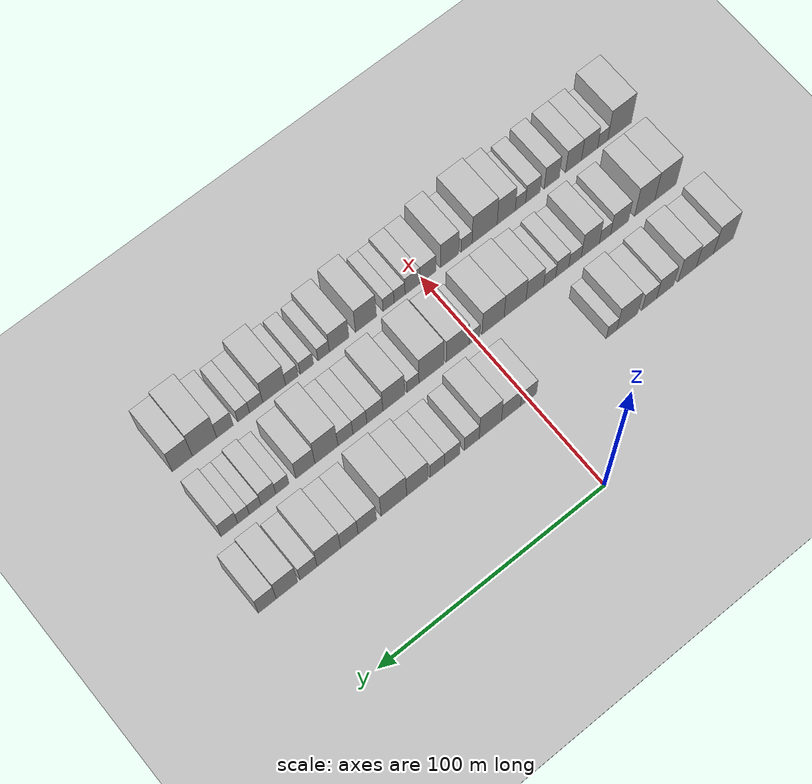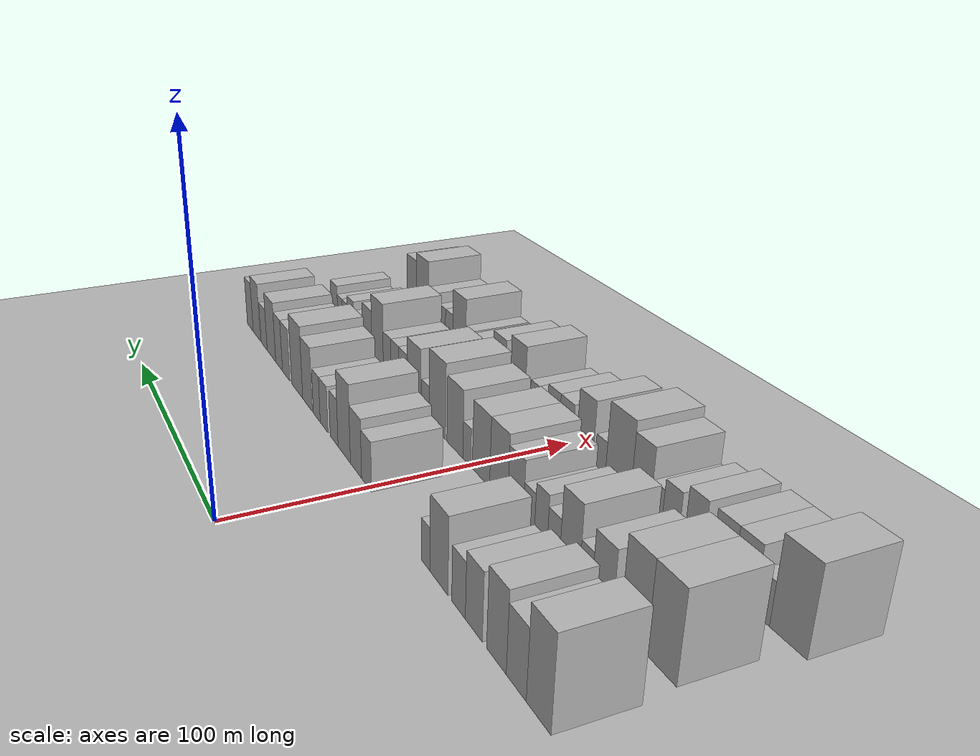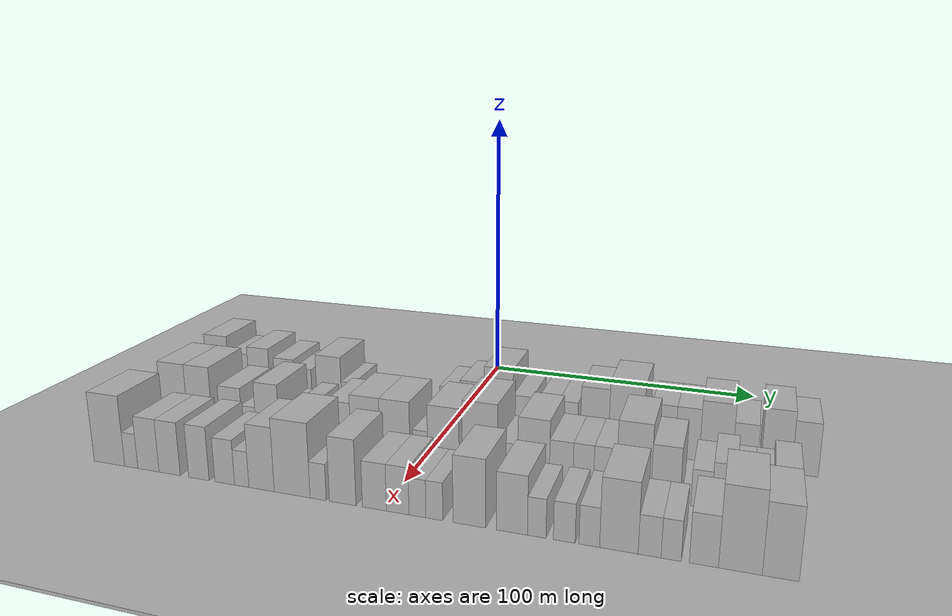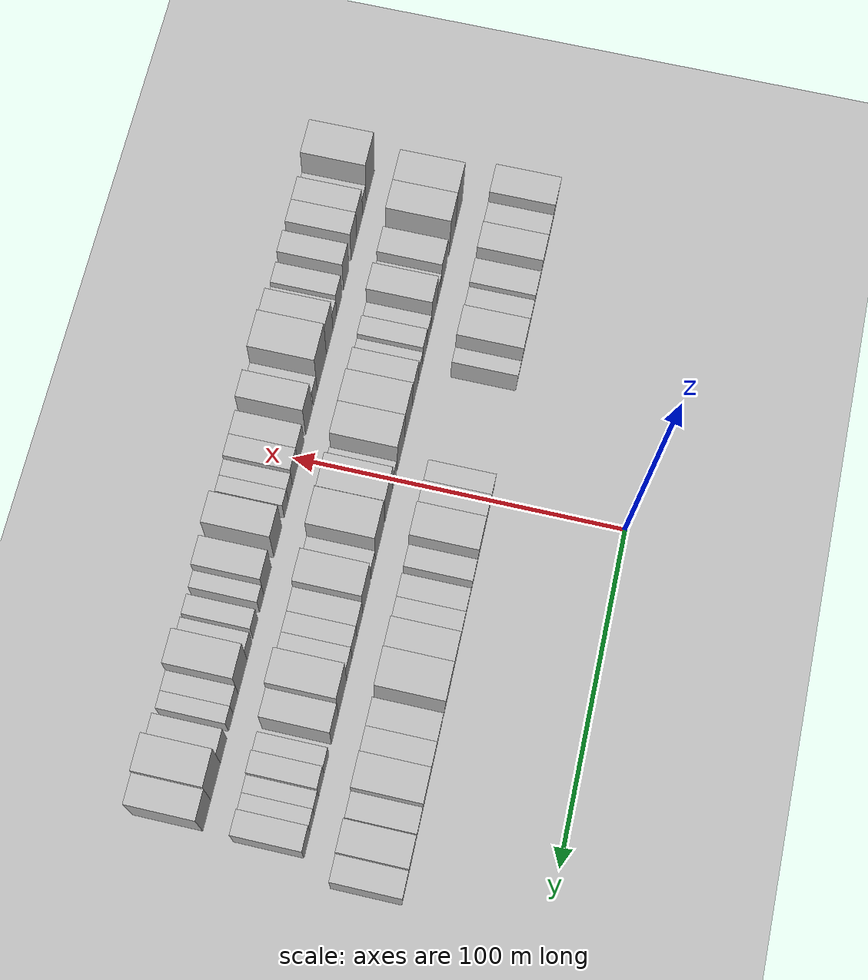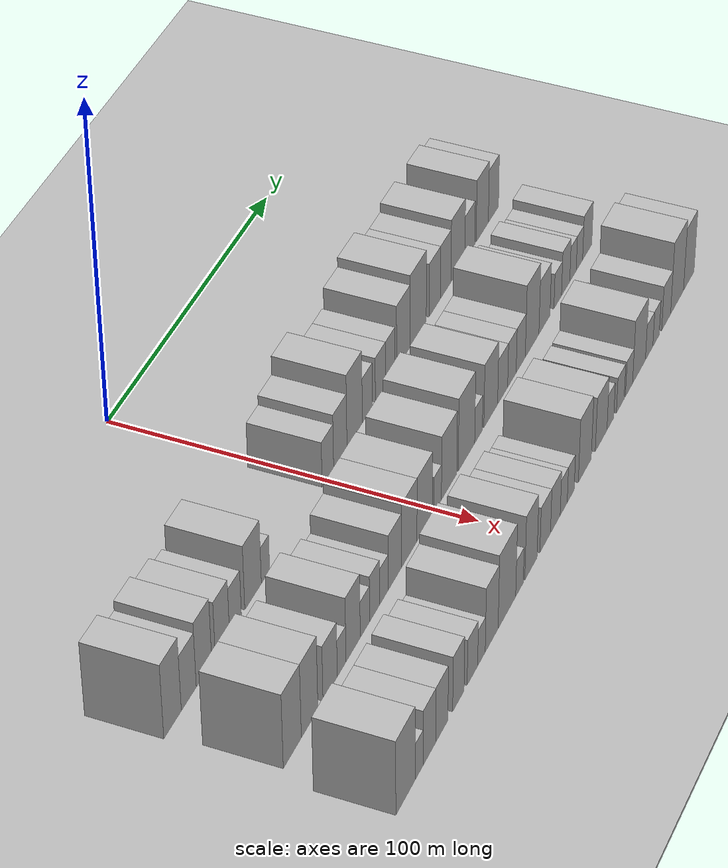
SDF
<sdf version="1.6">
 <world name="default">
  <include><name>ground_plane_1</name><uri>model://HANNAS_ground_plane</uri></include>
  <include>
   <name>ground_plane_2</name>
   <uri>model://HANNAS_ground_plane</uri>
   <pose>100 0 0  0 0 0</pose>
  </include>
  <model name="building_26">
   <static>1</static>
   <pose>50.0000 -91.2819 0 0.000000 0.000000 0.000000</pose>
   <link name="link">
    <pose>0 0 12.00 0 0 0</pose>
    <collision name="collision"><geometry><box><size>20.0000 9.6151 24.0000</size></box></geometry></collision>
    <visual name="visual">
     <cast_shadows>0</cast_shadows>
     <geometry><box><size>20.0000 9.6151 24.0000</size></box></geometry>
     <material>
      <script>
       <uri>model://HANNAS_wall/materials/scripts</uri>
       <uri>model://HANNAS_wall/materials/textures</uri>
       <name>vrc/HANNAS_wall</name>
      </script>
     </material>
    </visual>
   </link>
  </model>
  <model name="building_27">
   <static>1</static>
   <pose>50.0000 -82.3182 0 0.000000 0.000000 0.000000</pose>
   <link name="link">
    <pose>0 0 9.00 0 0 0</pose>
    <collision name="collision"><geometry><box><size>20.0000 8.3124 18.0000</size></box></geometry></collision>
    <visual name="visual">
     <cast_shadows>0</cast_shadows>
     <geometry><box><size>20.0000 8.3124 18.0000</size></box></geometry>
     <material>
      <script>
       <uri>model://HANNAS_wall/materials/scripts</uri>
       <uri>model://HANNAS_wall/materials/textures</uri>
       <name>vrc/HANNAS_wall</name>
      </script>
     </material>
    </visual>
   </link>
  </model>
  <model name="building_28">
   <static>1</static>
   <pose>50.0000 -73.7900 0 0.000000 0.000000 0.000000</pose>
   <link name="link">
    <pose>0 0 10.50 0 0 0</pose>
    <collision name="collision"><geometry><box><size>20.0000 8.7438 21.0000</size></box></geometry></collision>
    <visual name="visual">
     <cast_shadows>0</cast_shadows>
     <geometry><box><size>20.0000 8.7438 21.0000</size></box></geometry>
     <material>
      <script>
       <uri>model://HANNAS_wall/materials/scripts</uri>
       <uri>model://HANNAS_wall/materials/textures</uri>
       <name>vrc/HANNAS_wall</name>
      </script>
     </material>
    </visual>
   </link>
  </model>
  <model name="building_29">
   <static>1</static>
   <pose>50.0000 -63.3321 0 0.000000 0.000000 0.000000</pose>
   <link name="link">
    <pose>0 0 9.00 0 0 0</pose>
    <collision name="collision"><geometry><box><size>20.0000 8.1721 18.0000</size></box></geometry></collision>
    <visual name="visual">
     <cast_shadows>0</cast_shadows>
     <geometry><box><size>20.0000 8.1721 18.0000</size></box></geometry>
     <material>
      <script>
       <uri>model://HANNAS_wall/materials/scripts</uri>
       <uri>model://HANNAS_wall/materials/textures</uri>
       <name>vrc/HANNAS_wall</name>
      </script>
     </material>
    </visual>
   </link>
  </model>
  <model name="building_30">
   <static>1</static>
   <pose>50.0000 -55.7909 0 0.000000 0.000000 0.000000</pose>
   <link name="link">
    <pose>0 0 7.50 0 0 0</pose>
    <collision name="collision"><geometry><box><size>20.0000 6.9103 15.0000</size></box></geometry></collision>
    <visual name="visual">
     <cast_shadows>0</cast_shadows>
     <geometry><box><size>20.0000 6.9103 15.0000</size></box></geometry>
     <material>
      <script>
       <uri>model://HANNAS_wall/materials/scripts</uri>
       <uri>model://HANNAS_wall/materials/textures</uri>
       <name>vrc/HANNAS_wall</name>
      </script>
     </material>
    </visual>
   </link>
  </model>
  <model name="building_31">
   <static>1</static>
   <pose>50.0000 -45.4435 0 0.000000 0.000000 0.000000</pose>
   <link name="link">
    <pose>0 0 10.50 0 0 0</pose>
    <collision name="collision"><geometry><box><size>20.0000 9.7845 21.0000</size></box></geometry></collision>
    <visual name="visual">
     <cast_shadows>0</cast_shadows>
     <geometry><box><size>20.0000 9.7845 21.0000</size></box></geometry>
     <material>
      <script>
       <uri>model://HANNAS_wall/materials/scripts</uri>
       <uri>model://HANNAS_wall/materials/textures</uri>
       <name>vrc/HANNAS_wall</name>
      </script>
     </material>
    </visual>
   </link>
  </model>
  <model name="building_32">
   <static>1</static>
   <pose>50.0000 -38.0709 0 0.000000 0.000000 0.000000</pose>
   <link name="link">
    <pose>0 0 6.00 0 0 0</pose>
    <collision name="collision"><geometry><box><size>20.0000 4.9606 12.0000</size></box></geometry></collision>
    <visual name="visual">
     <cast_shadows>0</cast_shadows>
     <geometry><box><size>20.0000 4.9606 12.0000</size></box></geometry>
     <material>
      <script>
       <uri>model://HANNAS_wall/materials/scripts</uri>
       <uri>model://HANNAS_wall/materials/textures</uri>
       <name>vrc/HANNAS_wall</name>
      </script>
     </material>
    </visual>
   </link>
  </model>
  <model name="building_33">
   <static>1</static>
   <pose>50.0000 0.4339 0 0.000000 0.000000 0.000000</pose>
   <link name="link">
    <pose>0 0 7.50 0 0 0</pose>
    <collision name="collision"><geometry><box><size>20.0000 7.3497 15.0000</size></box></geometry></collision>
    <visual name="visual">
     <cast_shadows>0</cast_shadows>
     <geometry><box><size>20.0000 7.3497 15.0000</size></box></geometry>
     <material>
      <script>
       <uri>model://HANNAS_wall/materials/scripts</uri>
       <uri>model://HANNAS_wall/materials/textures</uri>
       <name>vrc/HANNAS_wall</name>
      </script>
     </material>
    </visual>
   </link>
  </model>
  <model name="building_34">
   <static>1</static>
   <pose>50.0000 8.4122 0 0.000000 0.000000 0.000000</pose>
   <link name="link">
    <pose>0 0 9.00 0 0 0</pose>
    <collision name="collision"><geometry><box><size>20.0000 8.6069 18.0000</size></box></geometry></collision>
    <visual name="visual">
     <cast_shadows>0</cast_shadows>
     <geometry><box><size>20.0000 8.6069 18.0000</size></box></geometry>
     <material>
      <script>
       <uri>model://HANNAS_wall/materials/scripts</uri>
       <uri>model://HANNAS_wall/materials/textures</uri>
       <name>vrc/HANNAS_wall</name>
      </script>
     </material>
    </visual>
   </link>
  </model>
  <model name="building_35">
   <static>1</static>
   <pose>50.0000 17.7551 0 0.000000 0.000000 0.000000</pose>
   <link name="link">
    <pose>0 0 12.00 0 0 0</pose>
    <collision name="collision"><geometry><box><size>20.0000 10.0788 24.0000</size></box></geometry></collision>
    <visual name="visual">
     <cast_shadows>0</cast_shadows>
     <geometry><box><size>20.0000 10.0788 24.0000</size></box></geometry>
     <material>
      <script>
       <uri>model://HANNAS_wall/materials/scripts</uri>
       <uri>model://HANNAS_wall/materials/textures</uri>
       <name>vrc/HANNAS_wall</name>
      </script>
     </material>
    </visual>
   </link>
  </model>
  <model name="building_36">
   <static>1</static>
   <pose>50.0000 26.1140 0 0.000000 0.000000 0.000000</pose>
   <link name="link">
    <pose>0 0 7.50 0 0 0</pose>
    <collision name="collision"><geometry><box><size>20.0000 6.6390 15.0000</size></box></geometry></collision>
    <visual name="visual">
     <cast_shadows>0</cast_shadows>
     <geometry><box><size>20.0000 6.6390 15.0000</size></box></geometry>
     <material>
      <script>
       <uri>model://HANNAS_wall/materials/scripts</uri>
       <uri>model://HANNAS_wall/materials/textures</uri>
       <name>vrc/HANNAS_wall</name>
      </script>
     </material>
    </visual>
   </link>
  </model>
  <model name="building_37">
   <static>1</static>
   <pose>50.0000 34.9077 0 0.000000 0.000000 0.000000</pose>
   <link name="link">
    <pose>0 0 7.50 0 0 0</pose>
    <collision name="collision"><geometry><box><size>20.0000 6.9484 15.0000</size></box></geometry></collision>
    <visual name="visual">
     <cast_shadows>0</cast_shadows>
     <geometry><box><size>20.0000 6.9484 15.0000</size></box></geometry>
     <material>
      <script>
       <uri>model://HANNAS_wall/materials/scripts</uri>
       <uri>model://HANNAS_wall/materials/textures</uri>
       <name>vrc/HANNAS_wall</name>
      </script>
     </material>
    </visual>
   </link>
  </model>
  <model name="building_38">
   <static>1</static>
   <pose>50.0000 41.5655 0 0.000000 0.000000 0.000000</pose>
   <link name="link">
    <pose>0 0 7.50 0 0 0</pose>
    <collision name="collision"><geometry><box><size>20.0000 6.3673 15.0000</size></box></geometry></collision>
    <visual name="visual">
     <cast_shadows>0</cast_shadows>
     <geometry><box><size>20.0000 6.3673 15.0000</size></box></geometry>
     <material>
      <script>
       <uri>model://HANNAS_wall/materials/scripts</uri>
       <uri>model://HANNAS_wall/materials/textures</uri>
       <name>vrc/HANNAS_wall</name>
      </script>
     </material>
    </visual>
   </link>
  </model>
  <model name="building_39">
   <static>1</static>
   <pose>50.0000 50.4224 0 0.000000 0.000000 0.000000</pose>
   <link name="link">
    <pose>0 0 10.50 0 0 0</pose>
    <collision name="collision"><geometry><box><size>20.0000 9.3465 21.0000</size></box></geometry></collision>
    <visual name="visual">
     <cast_shadows>0</cast_shadows>
     <geometry><box><size>20.0000 9.3465 21.0000</size></box></geometry>
     <material>
      <script>
       <uri>model://HANNAS_wall/materials/scripts</uri>
       <uri>model://HANNAS_wall/materials/textures</uri>
       <name>vrc/HANNAS_wall</name>
      </script>
     </material>
    </visual>
   </link>
  </model>
  <model name="building_40">
   <static>1</static>
   <pose>50.0000 60.7193 0 0.000000 0.000000 0.000000</pose>
   <link name="link">
    <pose>0 0 12.00 0 0 0</pose>
    <collision name="collision"><geometry><box><size>20.0000 11.2474 24.0000</size></box></geometry></collision>
    <visual name="visual">
     <cast_shadows>0</cast_shadows>
     <geometry><box><size>20.0000 11.2474 24.0000</size></box></geometry>
     <material>
      <script>
       <uri>model://HANNAS_wall/materials/scripts</uri>
       <uri>model://HANNAS_wall/materials/textures</uri>
       <name>vrc/HANNAS_wall</name>
      </script>
     </material>
    </visual>
   </link>
  </model>
  <model name="building_41">
   <static>1</static>
   <pose>50.0000 72.3830 0 0.000000 0.000000 0.000000</pose>
   <link name="link">
    <pose>0 0 9.00 0 0 0</pose>
    <collision name="collision"><geometry><box><size>20.0000 8.0800 18.0000</size></box></geometry></collision>
    <visual name="visual">
     <cast_shadows>0</cast_shadows>
     <geometry><box><size>20.0000 8.0800 18.0000</size></box></geometry>
     <material>
      <script>
       <uri>model://HANNAS_wall/materials/scripts</uri>
       <uri>model://HANNAS_wall/materials/textures</uri>
       <name>vrc/HANNAS_wall</name>
      </script>
     </material>
    </visual>
   </link>
  </model>
  <model name="building_42">
   <static>1</static>
   <pose>50.0000 80.2050 0 0.000000 0.000000 0.000000</pose>
   <link name="link">
    <pose>0 0 9.00 0 0 0</pose>
    <collision name="collision"><geometry><box><size>20.0000 7.5639 18.0000</size></box></geometry></collision>
    <visual name="visual">
     <cast_shadows>0</cast_shadows>
     <geometry><box><size>20.0000 7.5639 18.0000</size></box></geometry>
     <material>
      <script>
       <uri>model://HANNAS_wall/materials/scripts</uri>
       <uri>model://HANNAS_wall/materials/textures</uri>
       <name>vrc/HANNAS_wall</name>
      </script>
     </material>
    </visual>
   </link>
  </model>
  <model name="building_43">
   <static>1</static>
   <pose>50.0000 89.0378 0 0.000000 0.000000 0.000000</pose>
   <link name="link">
    <pose>0 0 10.50 0 0 0</pose>
    <collision name="collision"><geometry><box><size>20.0000 10.1018 21.0000</size></box></geometry></collision>
    <visual name="visual">
     <cast_shadows>0</cast_shadows>
     <geometry><box><size>20.0000 10.1018 21.0000</size></box></geometry>
     <material>
      <script>
       <uri>model://HANNAS_wall/materials/scripts</uri>
       <uri>model://HANNAS_wall/materials/textures</uri>
       <name>vrc/HANNAS_wall</name>
      </script>
     </material>
    </visual>
   </link>
  </model>
  <model name="building_44">
   <static>1</static>
   <pose>50.0000 97.7844 0 0.000000 0.000000 0.000000</pose>
   <link name="link">
    <pose>0 0 7.50 0 0 0</pose>
    <collision name="collision"><geometry><box><size>20.0000 7.3913 15.0000</size></box></geometry></collision>
    <visual name="visual">
     <cast_shadows>0</cast_shadows>
     <geometry><box><size>20.0000 7.3913 15.0000</size></box></geometry>
     <material>
      <script>
       <uri>model://HANNAS_wall/materials/scripts</uri>
       <uri>model://HANNAS_wall/materials/textures</uri>
       <name>vrc/HANNAS_wall</name>
      </script>
     </material>
    </visual>
   </link>
  </model>
  <model name="building_45">
   <static>1</static>
   <pose>50.0000 107.0497 0 0.000000 0.000000 0.000000</pose>
   <link name="link">
    <pose>0 0 10.50 0 0 0</pose>
    <collision name="collision"><geometry><box><size>20.0000 9.1391 21.0000</size></box></geometry></collision>
    <visual name="visual">
     <cast_shadows>0</cast_shadows>
     <geometry><box><size>20.0000 9.1391 21.0000</size></box></geometry>
     <material>
      <script>
       <uri>model://HANNAS_wall/materials/scripts</uri>
       <uri>model://HANNAS_wall/materials/textures</uri>
       <name>vrc/HANNAS_wall</name>
      </script>
     </material>
    </visual>
   </link>
  </model>
  <model name="building_46">
   <static>1</static>
   <pose>50.0000 115.4404 0 0.000000 0.000000 0.000000</pose>
   <link name="link">
    <pose>0 0 9.00 0 0 0</pose>
    <collision name="collision"><geometry><box><size>20.0000 7.6424 18.0000</size></box></geometry></collision>
    <visual name="visual">
     <cast_shadows>0</cast_shadows>
     <geometry><box><size>20.0000 7.6424 18.0000</size></box></geometry>
     <material>
      <script>
       <uri>model://HANNAS_wall/materials/scripts</uri>
       <uri>model://HANNAS_wall/materials/textures</uri>
       <name>vrc/HANNAS_wall</name>
      </script>
     </material>
    </visual>
   </link>
  </model>
  <model name="building_96">
   <static>1</static>
   <pose>79.0000 -89.3133 0 0.000000 0.000000 0.000000</pose>
   <link name="link">
    <pose>0 0 12.00 0 0 0</pose>
    <collision name="collision"><geometry><box><size>20.0000 10.3865 24.0000</size></box></geometry></collision>
    <visual name="visual">
     <cast_shadows>0</cast_shadows>
     <geometry><box><size>20.0000 10.3865 24.0000</size></box></geometry>
     <material>
      <script>
       <uri>model://HANNAS_wall/materials/scripts</uri>
       <uri>model://HANNAS_wall/materials/textures</uri>
       <name>vrc/HANNAS_wall</name>
      </script>
     </material>
    </visual>
   </link>
  </model>
  <model name="building_97">
   <static>1</static>
   <pose>79.0000 -79.2714 0 0.000000 0.000000 0.000000</pose>
   <link name="link">
    <pose>0 0 12.00 0 0 0</pose>
    <collision name="collision"><geometry><box><size>20.0000 9.6973 24.0000</size></box></geometry></collision>
    <visual name="visual">
     <cast_shadows>0</cast_shadows>
     <geometry><box><size>20.0000 9.6973 24.0000</size></box></geometry>
     <material>
      <script>
       <uri>model://HANNAS_wall/materials/scripts</uri>
       <uri>model://HANNAS_wall/materials/textures</uri>
       <name>vrc/HANNAS_wall</name>
      </script>
     </material>
    </visual>
   </link>
  </model>
  <model name="building_98">
   <static>1</static>
   <pose>79.0000 -67.1455 0 0.000000 0.000000 0.000000</pose>
   <link name="link">
    <pose>0 0 9.00 0 0 0</pose>
    <collision name="collision"><geometry><box><size>20.0000 8.5546 18.0000</size></box></geometry></collision>
    <visual name="visual">
     <cast_shadows>0</cast_shadows>
     <geometry><box><size>20.0000 8.5546 18.0000</size></box></geometry>
     <material>
      <script>
       <uri>model://HANNAS_wall/materials/scripts</uri>
       <uri>model://HANNAS_wall/materials/textures</uri>
       <name>vrc/HANNAS_wall</name>
      </script>
     </material>
    </visual>
   </link>
  </model>
  <model name="building_99">
   <static>1</static>
   <pose>79.0000 -60.2383 0 0.000000 0.000000 0.000000</pose>
   <link name="link">
    <pose>0 0 6.00 0 0 0</pose>
    <collision name="collision"><geometry><box><size>20.0000 5.2599 12.0000</size></box></geometry></collision>
    <visual name="visual">
     <cast_shadows>0</cast_shadows>
     <geometry><box><size>20.0000 5.2599 12.0000</size></box></geometry>
     <material>
      <script>
       <uri>model://HANNAS_wall/materials/scripts</uri>
       <uri>model://HANNAS_wall/materials/textures</uri>
       <name>vrc/HANNAS_wall</name>
      </script>
     </material>
    </visual>
   </link>
  </model>
  <model name="building_100">
   <static>1</static>
   <pose>79.0000 -53.2501 0 0.000000 0.000000 0.000000</pose>
   <link name="link">
    <pose>0 0 10.50 0 0 0</pose>
    <collision name="collision"><geometry><box><size>20.0000 8.7164 21.0000</size></box></geometry></collision>
    <visual name="visual">
     <cast_shadows>0</cast_shadows>
     <geometry><box><size>20.0000 8.7164 21.0000</size></box></geometry>
     <material>
      <script>
       <uri>model://HANNAS_wall/materials/scripts</uri>
       <uri>model://HANNAS_wall/materials/textures</uri>
       <name>vrc/HANNAS_wall</name>
      </script>
     </material>
    </visual>
   </link>
  </model>
  <model name="building_101">
   <static>1</static>
   <pose>79.0000 -45.9746 0 0.000000 0.000000 0.000000</pose>
   <link name="link">
    <pose>0 0 6.00 0 0 0</pose>
    <collision name="collision"><geometry><box><size>20.0000 5.8347 12.0000</size></box></geometry></collision>
    <visual name="visual">
     <cast_shadows>0</cast_shadows>
     <geometry><box><size>20.0000 5.8347 12.0000</size></box></geometry>
     <material>
      <script>
       <uri>model://HANNAS_wall/materials/scripts</uri>
       <uri>model://HANNAS_wall/materials/textures</uri>
       <name>vrc/HANNAS_wall</name>
      </script>
     </material>
    </visual>
   </link>
  </model>
  <model name="building_102">
   <static>1</static>
   <pose>79.0000 -39.9557 0 0.000000 0.000000 0.000000</pose>
   <link name="link">
    <pose>0 0 7.50 0 0 0</pose>
    <collision name="collision"><geometry><box><size>20.0000 6.2031 15.0000</size></box></geometry></collision>
    <visual name="visual">
     <cast_shadows>0</cast_shadows>
     <geometry><box><size>20.0000 6.2031 15.0000</size></box></geometry>
     <material>
      <script>
       <uri>model://HANNAS_wall/materials/scripts</uri>
       <uri>model://HANNAS_wall/materials/textures</uri>
       <name>vrc/HANNAS_wall</name>
      </script>
     </material>
    </visual>
   </link>
  </model>
  <model name="building_103">
   <static>1</static>
   <pose>79.0000 -34.0490 0 0.000000 0.000000 0.000000</pose>
   <link name="link">
    <pose>0 0 6.00 0 0 0</pose>
    <collision name="collision"><geometry><box><size>20.0000 5.6104 12.0000</size></box></geometry></collision>
    <visual name="visual">
     <cast_shadows>0</cast_shadows>
     <geometry><box><size>20.0000 5.6104 12.0000</size></box></geometry>
     <material>
      <script>
       <uri>model://HANNAS_wall/materials/scripts</uri>
       <uri>model://HANNAS_wall/materials/textures</uri>
       <name>vrc/HANNAS_wall</name>
      </script>
     </material>
    </visual>
   </link>
  </model>
  <model name="building_104">
   <static>1</static>
   <pose>79.0000 -27.1470 0 0.000000 0.000000 0.000000</pose>
   <link name="link">
    <pose>0 0 9.00 0 0 0</pose>
    <collision name="collision"><geometry><box><size>20.0000 8.1936 18.0000</size></box></geometry></collision>
    <visual name="visual">
     <cast_shadows>0</cast_shadows>
     <geometry><box><size>20.0000 8.1936 18.0000</size></box></geometry>
     <material>
      <script>
       <uri>model://HANNAS_wall/materials/scripts</uri>
       <uri>model://HANNAS_wall/materials/textures</uri>
       <name>vrc/HANNAS_wall</name>
      </script>
     </material>
    </visual>
   </link>
  </model>
  <model name="building_105">
   <static>1</static>
   <pose>79.0000 -17.9772 0 0.000000 0.000000 0.000000</pose>
   <link name="link">
    <pose>0 0 10.50 0 0 0</pose>
    <collision name="collision"><geometry><box><size>20.0000 10.1460 21.0000</size></box></geometry></collision>
    <visual name="visual">
     <cast_shadows>0</cast_shadows>
     <geometry><box><size>20.0000 10.1460 21.0000</size></box></geometry>
     <material>
      <script>
       <uri>model://HANNAS_wall/materials/scripts</uri>
       <uri>model://HANNAS_wall/materials/textures</uri>
       <name>vrc/HANNAS_wall</name>
      </script>
     </material>
    </visual>
   </link>
  </model>
  <model name="building_106">
   <static>1</static>
   <pose>79.0000 -7.7802 0 0.000000 0.000000 0.000000</pose>
   <link name="link">
    <pose>0 0 10.50 0 0 0</pose>
    <collision name="collision"><geometry><box><size>20.0000 10.2481 21.0000</size></box></geometry></collision>
    <visual name="visual">
     <cast_shadows>0</cast_shadows>
     <geometry><box><size>20.0000 10.2481 21.0000</size></box></geometry>
     <material>
      <script>
       <uri>model://HANNAS_wall/materials/scripts</uri>
       <uri>model://HANNAS_wall/materials/textures</uri>
       <name>vrc/HANNAS_wall</name>
      </script>
     </material>
    </visual>
   </link>
  </model>
  <model name="building_107">
   <static>1</static>
   <pose>79.0000 0.8167 0 0.000000 0.000000 0.000000</pose>
   <link name="link">
    <pose>0 0 6.00 0 0 0</pose>
    <collision name="collision"><geometry><box><size>20.0000 4.9455 12.0000</size></box></geometry></collision>
    <visual name="visual">
     <cast_shadows>0</cast_shadows>
     <geometry><box><size>20.0000 4.9455 12.0000</size></box></geometry>
     <material>
      <script>
       <uri>model://HANNAS_wall/materials/scripts</uri>
       <uri>model://HANNAS_wall/materials/textures</uri>
       <name>vrc/HANNAS_wall</name>
      </script>
     </material>
    </visual>
   </link>
  </model>
  <model name="building_108">
   <static>1</static>
   <pose>79.0000 8.4855 0 0.000000 0.000000 0.000000</pose>
   <link name="link">
    <pose>0 0 10.50 0 0 0</pose>
    <collision name="collision"><geometry><box><size>20.0000 10.3922 21.0000</size></box></geometry></collision>
    <visual name="visual">
     <cast_shadows>0</cast_shadows>
     <geometry><box><size>20.0000 10.3922 21.0000</size></box></geometry>
     <material>
      <script>
       <uri>model://HANNAS_wall/materials/scripts</uri>
       <uri>model://HANNAS_wall/materials/textures</uri>
       <name>vrc/HANNAS_wall</name>
      </script>
     </material>
    </visual>
   </link>
  </model>
  <model name="building_109">
   <static>1</static>
   <pose>79.0000 20.3405 0 0.000000 0.000000 0.000000</pose>
   <link name="link">
    <pose>0 0 12.00 0 0 0</pose>
    <collision name="collision"><geometry><box><size>20.0000 11.3179 24.0000</size></box></geometry></collision>
    <visual name="visual">
     <cast_shadows>0</cast_shadows>
     <geometry><box><size>20.0000 11.3179 24.0000</size></box></geometry>
     <material>
      <script>
       <uri>model://HANNAS_wall/materials/scripts</uri>
       <uri>model://HANNAS_wall/materials/textures</uri>
       <name>vrc/HANNAS_wall</name>
      </script>
     </material>
    </visual>
   </link>
  </model>
  <model name="building_110">
   <static>1</static>
   <pose>79.0000 28.7028 0 0.000000 0.000000 0.000000</pose>
   <link name="link">
    <pose>0 0 6.00 0 0 0</pose>
    <collision name="collision"><geometry><box><size>20.0000 5.4067 12.0000</size></box></geometry></collision>
    <visual name="visual">
     <cast_shadows>0</cast_shadows>
     <geometry><box><size>20.0000 5.4067 12.0000</size></box></geometry>
     <material>
      <script>
       <uri>model://HANNAS_wall/materials/scripts</uri>
       <uri>model://HANNAS_wall/materials/textures</uri>
       <name>vrc/HANNAS_wall</name>
      </script>
     </material>
    </visual>
   </link>
  </model>
  <model name="building_111">
   <static>1</static>
   <pose>79.0000 37.2859 0 0.000000 0.000000 0.000000</pose>
   <link name="link">
    <pose>0 0 10.50 0 0 0</pose>
    <collision name="collision"><geometry><box><size>20.0000 9.7596 21.0000</size></box></geometry></collision>
    <visual name="visual">
     <cast_shadows>0</cast_shadows>
     <geometry><box><size>20.0000 9.7596 21.0000</size></box></geometry>
     <material>
      <script>
       <uri>model://HANNAS_wall/materials/scripts</uri>
       <uri>model://HANNAS_wall/materials/textures</uri>
       <name>vrc/HANNAS_wall</name>
      </script>
     </material>
    </visual>
   </link>
  </model>
  <model name="building_112">
   <static>1</static>
   <pose>79.0000 45.7613 0 0.000000 0.000000 0.000000</pose>
   <link name="link">
    <pose>0 0 7.50 0 0 0</pose>
    <collision name="collision"><geometry><box><size>20.0000 7.1910 15.0000</size></box></geometry></collision>
    <visual name="visual">
     <cast_shadows>0</cast_shadows>
     <geometry><box><size>20.0000 7.1910 15.0000</size></box></geometry>
     <material>
      <script>
       <uri>model://HANNAS_wall/materials/scripts</uri>
       <uri>model://HANNAS_wall/materials/textures</uri>
       <name>vrc/HANNAS_wall</name>
      </script>
     </material>
    </visual>
   </link>
  </model>
  <model name="building_113">
   <static>1</static>
   <pose>79.0000 52.4323 0 0.000000 0.000000 0.000000</pose>
   <link name="link">
    <pose>0 0 7.50 0 0 0</pose>
    <collision name="collision"><geometry><box><size>20.0000 6.1511 15.0000</size></box></geometry></collision>
    <visual name="visual">
     <cast_shadows>0</cast_shadows>
     <geometry><box><size>20.0000 6.1511 15.0000</size></box></geometry>
     <material>
      <script>
       <uri>model://HANNAS_wall/materials/scripts</uri>
       <uri>model://HANNAS_wall/materials/textures</uri>
       <name>vrc/HANNAS_wall</name>
      </script>
     </material>
    </visual>
   </link>
  </model>
  <model name="building_114">
   <static>1</static>
   <pose>79.0000 58.8462 0 0.000000 0.000000 0.000000</pose>
   <link name="link">
    <pose>0 0 7.50 0 0 0</pose>
    <collision name="collision"><geometry><box><size>20.0000 6.6766 15.0000</size></box></geometry></collision>
    <visual name="visual">
     <cast_shadows>0</cast_shadows>
     <geometry><box><size>20.0000 6.6766 15.0000</size></box></geometry>
     <material>
      <script>
       <uri>model://HANNAS_wall/materials/scripts</uri>
       <uri>model://HANNAS_wall/materials/textures</uri>
       <name>vrc/HANNAS_wall</name>
      </script>
     </material>
    </visual>
   </link>
  </model>
  <model name="building_115">
   <static>1</static>
   <pose>79.0000 67.2313 0 0.000000 0.000000 0.000000</pose>
   <link name="link">
    <pose>0 0 12.00 0 0 0</pose>
    <collision name="collision"><geometry><box><size>20.0000 10.0936 24.0000</size></box></geometry></collision>
    <visual name="visual">
     <cast_shadows>0</cast_shadows>
     <geometry><box><size>20.0000 10.0936 24.0000</size></box></geometry>
     <material>
      <script>
       <uri>model://HANNAS_wall/materials/scripts</uri>
       <uri>model://HANNAS_wall/materials/textures</uri>
       <name>vrc/HANNAS_wall</name>
      </script>
     </material>
    </visual>
   </link>
  </model>
  <model name="building_116">
   <static>1</static>
   <pose>79.0000 76.4415 0 0.000000 0.000000 0.000000</pose>
   <link name="link">
    <pose>0 0 9.00 0 0 0</pose>
    <collision name="collision"><geometry><box><size>20.0000 8.3267 18.0000</size></box></geometry></collision>
    <visual name="visual">
     <cast_shadows>0</cast_shadows>
     <geometry><box><size>20.0000 8.3267 18.0000</size></box></geometry>
     <material>
      <script>
       <uri>model://HANNAS_wall/materials/scripts</uri>
       <uri>model://HANNAS_wall/materials/textures</uri>
       <name>vrc/HANNAS_wall</name>
      </script>
     </material>
    </visual>
   </link>
  </model>
  <model name="building_117">
   <static>1</static>
   <pose>79.0000 86.4814 0 0.000000 0.000000 0.000000</pose>
   <link name="link">
    <pose>0 0 6.00 0 0 0</pose>
    <collision name="collision"><geometry><box><size>20.0000 5.7530 12.0000</size></box></geometry></collision>
    <visual name="visual">
     <cast_shadows>0</cast_shadows>
     <geometry><box><size>20.0000 5.7530 12.0000</size></box></geometry>
     <material>
      <script>
       <uri>model://HANNAS_wall/materials/scripts</uri>
       <uri>model://HANNAS_wall/materials/textures</uri>
       <name>vrc/HANNAS_wall</name>
      </script>
     </material>
    </visual>
   </link>
  </model>
  <model name="building_118">
   <static>1</static>
   <pose>79.0000 92.5421 0 0.000000 0.000000 0.000000</pose>
   <link name="link">
    <pose>0 0 7.50 0 0 0</pose>
    <collision name="collision"><geometry><box><size>20.0000 6.3684 15.0000</size></box></geometry></collision>
    <visual name="visual">
     <cast_shadows>0</cast_shadows>
     <geometry><box><size>20.0000 6.3684 15.0000</size></box></geometry>
     <material>
      <script>
       <uri>model://HANNAS_wall/materials/scripts</uri>
       <uri>model://HANNAS_wall/materials/textures</uri>
       <name>vrc/HANNAS_wall</name>
      </script>
     </material>
    </visual>
   </link>
  </model>
  <model name="building_119">
   <static>1</static>
   <pose>79.0000 98.2413 0 0.000000 0.000000 0.000000</pose>
   <link name="link">
    <pose>0 0 6.00 0 0 0</pose>
    <collision name="collision"><geometry><box><size>20.0000 5.0301 12.0000</size></box></geometry></collision>
    <visual name="visual">
     <cast_shadows>0</cast_shadows>
     <geometry><box><size>20.0000 5.0301 12.0000</size></box></geometry>
     <material>
      <script>
       <uri>model://HANNAS_wall/materials/scripts</uri>
       <uri>model://HANNAS_wall/materials/textures</uri>
       <name>vrc/HANNAS_wall</name>
      </script>
     </material>
    </visual>
   </link>
  </model>
  <model name="building_120">
   <static>1</static>
   <pose>79.0000 103.2448 0 0.000000 0.000000 0.000000</pose>
   <link name="link">
    <pose>0 0 6.00 0 0 0</pose>
    <collision name="collision"><geometry><box><size>20.0000 4.9769 12.0000</size></box></geometry></collision>
    <visual name="visual">
     <cast_shadows>0</cast_shadows>
     <geometry><box><size>20.0000 4.9769 12.0000</size></box></geometry>
     <material>
      <script>
       <uri>model://HANNAS_wall/materials/scripts</uri>
       <uri>model://HANNAS_wall/materials/textures</uri>
       <name>vrc/HANNAS_wall</name>
      </script>
     </material>
    </visual>
   </link>
  </model>
  <model name="building_121">
   <static>1</static>
   <pose>79.0000 109.3483 0 0.000000 0.000000 0.000000</pose>
   <link name="link">
    <pose>0 0 7.50 0 0 0</pose>
    <collision name="collision"><geometry><box><size>20.0000 7.2300 15.0000</size></box></geometry></collision>
    <visual name="visual">
     <cast_shadows>0</cast_shadows>
     <geometry><box><size>20.0000 7.2300 15.0000</size></box></geometry>
     <material>
      <script>
       <uri>model://HANNAS_wall/materials/scripts</uri>
       <uri>model://HANNAS_wall/materials/textures</uri>
       <name>vrc/HANNAS_wall</name>
      </script>
     </material>
    </visual>
   </link>
  </model>
  <model name="building_171">
   <static>1</static>
   <pose>108.0000 -92.5693 0 0.000000 0.000000 0.000000</pose>
   <link name="link">
    <pose>0 0 12.00 0 0 0</pose>
    <collision name="collision"><geometry><box><size>20.0000 11.5452 24.0000</size></box></geometry></collision>
    <visual name="visual">
     <cast_shadows>0</cast_shadows>
     <geometry><box><size>20.0000 11.5452 24.0000</size></box></geometry>
     <material>
      <script>
       <uri>model://HANNAS_wall/materials/scripts</uri>
       <uri>model://HANNAS_wall/materials/textures</uri>
       <name>vrc/HANNAS_wall</name>
      </script>
     </material>
    </visual>
   </link>
  </model>
  <model name="building_172">
   <static>1</static>
   <pose>108.0000 -84.3582 0 0.000000 0.000000 0.000000</pose>
   <link name="link">
    <pose>0 0 6.00 0 0 0</pose>
    <collision name="collision"><geometry><box><size>20.0000 4.8769 12.0000</size></box></geometry></collision>
    <visual name="visual">
     <cast_shadows>0</cast_shadows>
     <geometry><box><size>20.0000 4.8769 12.0000</size></box></geometry>
     <material>
      <script>
       <uri>model://HANNAS_wall/materials/scripts</uri>
       <uri>model://HANNAS_wall/materials/textures</uri>
       <name>vrc/HANNAS_wall</name>
      </script>
     </material>
    </visual>
   </link>
  </model>
  <model name="building_173">
   <static>1</static>
   <pose>108.0000 -78.0240 0 0.000000 0.000000 0.000000</pose>
   <link name="link">
    <pose>0 0 9.00 0 0 0</pose>
    <collision name="collision"><geometry><box><size>20.0000 7.7917 18.0000</size></box></geometry></collision>
    <visual name="visual">
     <cast_shadows>0</cast_shadows>
     <geometry><box><size>20.0000 7.7917 18.0000</size></box></geometry>
     <material>
      <script>
       <uri>model://HANNAS_wall/materials/scripts</uri>
       <uri>model://HANNAS_wall/materials/textures</uri>
       <name>vrc/HANNAS_wall</name>
      </script>
     </material>
    </visual>
   </link>
  </model>
  <model name="building_174">
   <static>1</static>
   <pose>108.0000 -70.2976 0 0.000000 0.000000 0.000000</pose>
   <link name="link">
    <pose>0 0 9.00 0 0 0</pose>
    <collision name="collision"><geometry><box><size>20.0000 7.6611 18.0000</size></box></geometry></collision>
    <visual name="visual">
     <cast_shadows>0</cast_shadows>
     <geometry><box><size>20.0000 7.6611 18.0000</size></box></geometry>
     <material>
      <script>
       <uri>model://HANNAS_wall/materials/scripts</uri>
       <uri>model://HANNAS_wall/materials/textures</uri>
       <name>vrc/HANNAS_wall</name>
      </script>
     </material>
    </visual>
   </link>
  </model>
  <model name="building_175">
   <static>1</static>
   <pose>108.0000 -59.8496 0 0.000000 0.000000 0.000000</pose>
   <link name="link">
    <pose>0 0 9.00 0 0 0</pose>
    <collision name="collision"><geometry><box><size>20.0000 7.2350 18.0000</size></box></geometry></collision>
    <visual name="visual">
     <cast_shadows>0</cast_shadows>
     <geometry><box><size>20.0000 7.2350 18.0000</size></box></geometry>
     <material>
      <script>
       <uri>model://HANNAS_wall/materials/scripts</uri>
       <uri>model://HANNAS_wall/materials/textures</uri>
       <name>vrc/HANNAS_wall</name>
      </script>
     </material>
    </visual>
   </link>
  </model>
  <model name="building_176">
   <static>1</static>
   <pose>108.0000 -50.8340 0 0.000000 0.000000 0.000000</pose>
   <link name="link">
    <pose>0 0 7.50 0 0 0</pose>
    <collision name="collision"><geometry><box><size>20.0000 6.7961 15.0000</size></box></geometry></collision>
    <visual name="visual">
     <cast_shadows>0</cast_shadows>
     <geometry><box><size>20.0000 6.7961 15.0000</size></box></geometry>
     <material>
      <script>
       <uri>model://HANNAS_wall/materials/scripts</uri>
       <uri>model://HANNAS_wall/materials/textures</uri>
       <name>vrc/HANNAS_wall</name>
      </script>
     </material>
    </visual>
   </link>
  </model>
  <model name="building_177">
   <static>1</static>
   <pose>108.0000 -44.9767 0 0.000000 0.000000 0.000000</pose>
   <link name="link">
    <pose>0 0 6.00 0 0 0</pose>
    <collision name="collision"><geometry><box><size>20.0000 4.9185 12.0000</size></box></geometry></collision>
    <visual name="visual">
     <cast_shadows>0</cast_shadows>
     <geometry><box><size>20.0000 4.9185 12.0000</size></box></geometry>
     <material>
      <script>
       <uri>model://HANNAS_wall/materials/scripts</uri>
       <uri>model://HANNAS_wall/materials/textures</uri>
       <name>vrc/HANNAS_wall</name>
      </script>
     </material>
    </visual>
   </link>
  </model>
  <model name="building_178">
   <static>1</static>
   <pose>108.0000 -38.2593 0 0.000000 0.000000 0.000000</pose>
   <link name="link">
    <pose>0 0 10.50 0 0 0</pose>
    <collision name="collision"><geometry><box><size>20.0000 8.5162 21.0000</size></box></geometry></collision>
    <visual name="visual">
     <cast_shadows>0</cast_shadows>
     <geometry><box><size>20.0000 8.5162 21.0000</size></box></geometry>
     <material>
      <script>
       <uri>model://HANNAS_wall/materials/scripts</uri>
       <uri>model://HANNAS_wall/materials/textures</uri>
       <name>vrc/HANNAS_wall</name>
      </script>
     </material>
    </visual>
   </link>
  </model>
  <model name="building_179">
   <static>1</static>
   <pose>108.0000 -28.1086 0 0.000000 0.000000 0.000000</pose>
   <link name="link">
    <pose>0 0 12.00 0 0 0</pose>
    <collision name="collision"><geometry><box><size>20.0000 11.7854 24.0000</size></box></geometry></collision>
    <visual name="visual">
     <cast_shadows>0</cast_shadows>
     <geometry><box><size>20.0000 11.7854 24.0000</size></box></geometry>
     <material>
      <script>
       <uri>model://HANNAS_wall/materials/scripts</uri>
       <uri>model://HANNAS_wall/materials/textures</uri>
       <name>vrc/HANNAS_wall</name>
      </script>
     </material>
    </visual>
   </link>
  </model>
  <model name="building_180">
   <static>1</static>
   <pose>108.0000 -19.6069 0 0.000000 0.000000 0.000000</pose>
   <link name="link">
    <pose>0 0 6.00 0 0 0</pose>
    <collision name="collision"><geometry><box><size>20.0000 5.2179 12.0000</size></box></geometry></collision>
    <visual name="visual">
     <cast_shadows>0</cast_shadows>
     <geometry><box><size>20.0000 5.2179 12.0000</size></box></geometry>
     <material>
      <script>
       <uri>model://HANNAS_wall/materials/scripts</uri>
       <uri>model://HANNAS_wall/materials/textures</uri>
       <name>vrc/HANNAS_wall</name>
      </script>
     </material>
    </visual>
   </link>
  </model>
  <model name="building_181">
   <static>1</static>
   <pose>108.0000 -11.7822 0 0.000000 0.000000 0.000000</pose>
   <link name="link">
    <pose>0 0 10.50 0 0 0</pose>
    <collision name="collision"><geometry><box><size>20.0000 8.4315 21.0000</size></box></geometry></collision>
    <visual name="visual">
     <cast_shadows>0</cast_shadows>
     <geometry><box><size>20.0000 8.4315 21.0000</size></box></geometry>
     <material>
      <script>
       <uri>model://HANNAS_wall/materials/scripts</uri>
       <uri>model://HANNAS_wall/materials/textures</uri>
       <name>vrc/HANNAS_wall</name>
      </script>
     </material>
    </visual>
   </link>
  </model>
  <model name="building_182">
   <static>1</static>
   <pose>108.0000 -1.8527 0 0.000000 0.000000 0.000000</pose>
   <link name="link">
    <pose>0 0 7.50 0 0 0</pose>
    <collision name="collision"><geometry><box><size>20.0000 7.4276 15.0000</size></box></geometry></collision>
    <visual name="visual">
     <cast_shadows>0</cast_shadows>
     <geometry><box><size>20.0000 7.4276 15.0000</size></box></geometry>
     <material>
      <script>
       <uri>model://HANNAS_wall/materials/scripts</uri>
       <uri>model://HANNAS_wall/materials/textures</uri>
       <name>vrc/HANNAS_wall</name>
      </script>
     </material>
    </visual>
   </link>
  </model>
  <model name="building_183">
   <static>1</static>
   <pose>108.0000 5.2971 0 0.000000 0.000000 0.000000</pose>
   <link name="link">
    <pose>0 0 7.50 0 0 0</pose>
    <collision name="collision"><geometry><box><size>20.0000 6.8719 15.0000</size></box></geometry></collision>
    <visual name="visual">
     <cast_shadows>0</cast_shadows>
     <geometry><box><size>20.0000 6.8719 15.0000</size></box></geometry>
     <material>
      <script>
       <uri>model://HANNAS_wall/materials/scripts</uri>
       <uri>model://HANNAS_wall/materials/textures</uri>
       <name>vrc/HANNAS_wall</name>
      </script>
     </material>
    </visual>
   </link>
  </model>
  <model name="building_184">
   <static>1</static>
   <pose>108.0000 11.2485 0 0.000000 0.000000 0.000000</pose>
   <link name="link">
    <pose>0 0 6.00 0 0 0</pose>
    <collision name="collision"><geometry><box><size>20.0000 5.0310 12.0000</size></box></geometry></collision>
    <visual name="visual">
     <cast_shadows>0</cast_shadows>
     <geometry><box><size>20.0000 5.0310 12.0000</size></box></geometry>
     <material>
      <script>
       <uri>model://HANNAS_wall/materials/scripts</uri>
       <uri>model://HANNAS_wall/materials/textures</uri>
       <name>vrc/HANNAS_wall</name>
      </script>
     </material>
    </visual>
   </link>
  </model>
  <model name="building_185">
   <static>1</static>
   <pose>108.0000 16.2755 0 0.000000 0.000000 0.000000</pose>
   <link name="link">
    <pose>0 0 6.00 0 0 0</pose>
    <collision name="collision"><geometry><box><size>20.0000 5.0230 12.0000</size></box></geometry></collision>
    <visual name="visual">
     <cast_shadows>0</cast_shadows>
     <geometry><box><size>20.0000 5.0230 12.0000</size></box></geometry>
     <material>
      <script>
       <uri>model://HANNAS_wall/materials/scripts</uri>
       <uri>model://HANNAS_wall/materials/textures</uri>
       <name>vrc/HANNAS_wall</name>
      </script>
     </material>
    </visual>
   </link>
  </model>
  <model name="building_186">
   <static>1</static>
   <pose>108.0000 26.5199 0 0.000000 0.000000 0.000000</pose>
   <link name="link">
    <pose>0 0 10.50 0 0 0</pose>
    <collision name="collision"><geometry><box><size>20.0000 9.4658 21.0000</size></box></geometry></collision>
    <visual name="visual">
     <cast_shadows>0</cast_shadows>
     <geometry><box><size>20.0000 9.4658 21.0000</size></box></geometry>
     <material>
      <script>
       <uri>model://HANNAS_wall/materials/scripts</uri>
       <uri>model://HANNAS_wall/materials/textures</uri>
       <name>vrc/HANNAS_wall</name>
      </script>
     </material>
    </visual>
   </link>
  </model>
  <model name="building_187">
   <static>1</static>
   <pose>108.0000 38.6197 0 0.000000 0.000000 0.000000</pose>
   <link name="link">
    <pose>0 0 9.00 0 0 0</pose>
    <collision name="collision"><geometry><box><size>20.0000 8.7338 18.0000</size></box></geometry></collision>
    <visual name="visual">
     <cast_shadows>0</cast_shadows>
     <geometry><box><size>20.0000 8.7338 18.0000</size></box></geometry>
     <material>
      <script>
       <uri>model://HANNAS_wall/materials/scripts</uri>
       <uri>model://HANNAS_wall/materials/textures</uri>
       <name>vrc/HANNAS_wall</name>
      </script>
     </material>
    </visual>
   </link>
  </model>
  <model name="building_188">
   <static>1</static>
   <pose>108.0000 45.5582 0 0.000000 0.000000 0.000000</pose>
   <link name="link">
    <pose>0 0 6.00 0 0 0</pose>
    <collision name="collision"><geometry><box><size>20.0000 5.1432 12.0000</size></box></geometry></collision>
    <visual name="visual">
     <cast_shadows>0</cast_shadows>
     <geometry><box><size>20.0000 5.1432 12.0000</size></box></geometry>
     <material>
      <script>
       <uri>model://HANNAS_wall/materials/scripts</uri>
       <uri>model://HANNAS_wall/materials/textures</uri>
       <name>vrc/HANNAS_wall</name>
      </script>
     </material>
    </visual>
   </link>
  </model>
  <model name="building_189">
   <static>1</static>
   <pose>108.0000 53.0809 0 0.000000 0.000000 0.000000</pose>
   <link name="link">
    <pose>0 0 6.00 0 0 0</pose>
    <collision name="collision"><geometry><box><size>20.0000 5.9023 12.0000</size></box></geometry></collision>
    <visual name="visual">
     <cast_shadows>0</cast_shadows>
     <geometry><box><size>20.0000 5.9023 12.0000</size></box></geometry>
     <material>
      <script>
       <uri>model://HANNAS_wall/materials/scripts</uri>
       <uri>model://HANNAS_wall/materials/textures</uri>
       <name>vrc/HANNAS_wall</name>
      </script>
     </material>
    </visual>
   </link>
  </model>
  <model name="building_190">
   <static>1</static>
   <pose>108.0000 59.7876 0 0.000000 0.000000 0.000000</pose>
   <link name="link">
    <pose>0 0 6.00 0 0 0</pose>
    <collision name="collision"><geometry><box><size>20.0000 5.5111 12.0000</size></box></geometry></collision>
    <visual name="visual">
     <cast_shadows>0</cast_shadows>
     <geometry><box><size>20.0000 5.5111 12.0000</size></box></geometry>
     <material>
      <script>
       <uri>model://HANNAS_wall/materials/scripts</uri>
       <uri>model://HANNAS_wall/materials/textures</uri>
       <name>vrc/HANNAS_wall</name>
      </script>
     </material>
    </visual>
   </link>
  </model>
  <model name="building_191">
   <static>1</static>
   <pose>108.0000 67.5700 0 0.000000 0.000000 0.000000</pose>
   <link name="link">
    <pose>0 0 10.50 0 0 0</pose>
    <collision name="collision"><geometry><box><size>20.0000 10.0538 21.0000</size></box></geometry></collision>
    <visual name="visual">
     <cast_shadows>0</cast_shadows>
     <geometry><box><size>20.0000 10.0538 21.0000</size></box></geometry>
     <material>
      <script>
       <uri>model://HANNAS_wall/materials/scripts</uri>
       <uri>model://HANNAS_wall/materials/textures</uri>
       <name>vrc/HANNAS_wall</name>
      </script>
     </material>
    </visual>
   </link>
  </model>
  <model name="building_192">
   <static>1</static>
   <pose>108.0000 75.5323 0 0.000000 0.000000 0.000000</pose>
   <link name="link">
    <pose>0 0 6.00 0 0 0</pose>
    <collision name="collision"><geometry><box><size>20.0000 5.8708 12.0000</size></box></geometry></collision>
    <visual name="visual">
     <cast_shadows>0</cast_shadows>
     <geometry><box><size>20.0000 5.8708 12.0000</size></box></geometry>
     <material>
      <script>
       <uri>model://HANNAS_wall/materials/scripts</uri>
       <uri>model://HANNAS_wall/materials/textures</uri>
       <name>vrc/HANNAS_wall</name>
      </script>
     </material>
    </visual>
   </link>
  </model>
  <model name="building_193">
   <static>1</static>
   <pose>108.0000 81.0048 0 0.000000 0.000000 0.000000</pose>
   <link name="link">
    <pose>0 0 6.00 0 0 0</pose>
    <collision name="collision"><geometry><box><size>20.0000 5.0741 12.0000</size></box></geometry></collision>
    <visual name="visual">
     <cast_shadows>0</cast_shadows>
     <geometry><box><size>20.0000 5.0741 12.0000</size></box></geometry>
     <material>
      <script>
       <uri>model://HANNAS_wall/materials/scripts</uri>
       <uri>model://HANNAS_wall/materials/textures</uri>
       <name>vrc/HANNAS_wall</name>
      </script>
     </material>
    </visual>
   </link>
  </model>
  <model name="building_194">
   <static>1</static>
   <pose>108.0000 89.1507 0 0.000000 0.000000 0.000000</pose>
   <link name="link">
    <pose>0 0 7.50 0 0 0</pose>
    <collision name="collision"><geometry><box><size>20.0000 7.2178 15.0000</size></box></geometry></collision>
    <visual name="visual">
     <cast_shadows>0</cast_shadows>
     <geometry><box><size>20.0000 7.2178 15.0000</size></box></geometry>
     <material>
      <script>
       <uri>model://HANNAS_wall/materials/scripts</uri>
       <uri>model://HANNAS_wall/materials/textures</uri>
       <name>vrc/HANNAS_wall</name>
      </script>
     </material>
    </visual>
   </link>
  </model>
  <model name="building_195">
   <static>1</static>
   <pose>108.0000 98.0377 0 0.000000 0.000000 0.000000</pose>
   <link name="link">
    <pose>0 0 12.00 0 0 0</pose>
    <collision name="collision"><geometry><box><size>20.0000 10.5561 24.0000</size></box></geometry></collision>
    <visual name="visual">
     <cast_shadows>0</cast_shadows>
     <geometry><box><size>20.0000 10.5561 24.0000</size></box></geometry>
     <material>
      <script>
       <uri>model://HANNAS_wall/materials/scripts</uri>
       <uri>model://HANNAS_wall/materials/textures</uri>
       <name>vrc/HANNAS_wall</name>
      </script>
     </material>
    </visual>
   </link>
  </model>
  <model name="building_196">
   <static>1</static>
   <pose>108.0000 107.6641 0 0.000000 0.000000 0.000000</pose>
   <link name="link">
    <pose>0 0 10.50 0 0 0</pose>
    <collision name="collision"><geometry><box><size>20.0000 8.6967 21.0000</size></box></geometry></collision>
    <visual name="visual">
     <cast_shadows>0</cast_shadows>
     <geometry><box><size>20.0000 8.6967 21.0000</size></box></geometry>
     <material>
      <script>
       <uri>model://HANNAS_wall/materials/scripts</uri>
       <uri>model://HANNAS_wall/materials/textures</uri>
       <name>vrc/HANNAS_wall</name>
      </script>
     </material>
    </visual>
   </link>
  </model>
 </world>
</sdf>
